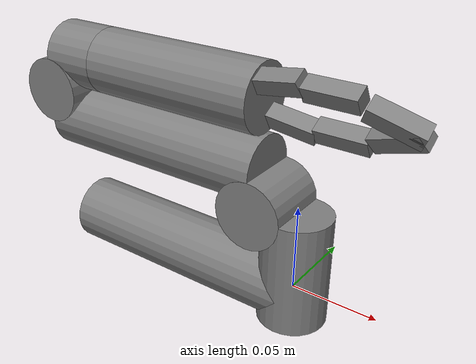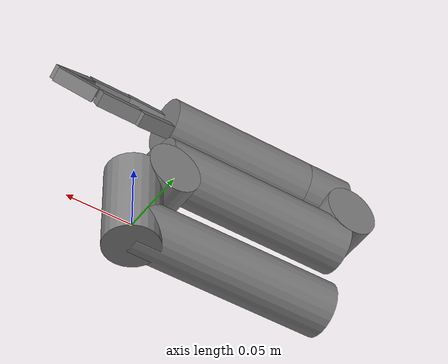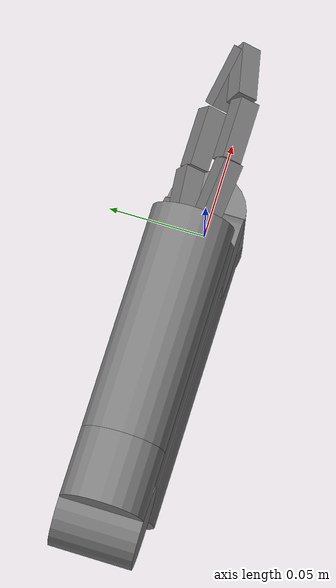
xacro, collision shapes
<?xml version="1.0"?>
<robot xmlns:xacro="http://www.ros.org/wiki/xacro" name="alpha_5">
    <xacro:arg name="initial_positions_file" default="initial_positions.yaml" />

    <!-- Import alpha_5 urdf file -->
    <xacro:include filename="$(find bpl_alpha_test)/urdf/alpha_5.urdf.xacro" />

    <!-- Import control_xacro -->
    <xacro:include filename="alpha_5.ros2_control.xacro" />

    <xacro:alpha_5_ros2_control name="FakeSystem" initial_positions_file="$(arg initial_positions_file)"/>

</robot>

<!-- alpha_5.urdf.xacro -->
<robot name="alpha_5" xmlns:xacro="http://ros.org/wiki/xacro">

    <material name="black">
        <color rgba="0.5 0.5 0.5 1.0"/>
    </material>

    <link name="world"/>

    <joint name="world_to_base" type="fixed">
        <parent link="world"/>
        <child link="base_link"/>
        <origin xyz="0 0 0" rpy="0 0 0"/>
    </joint>

    <link name="base_link">
        <inertial>
            <mass value="1.0" />
              <inertia ixx="0.001" iyy="0.001" izz="0.001"
                       ixy="0.0" ixz="0.0" iyz="0.0" />
        </inertial>
    </link>

    <link name="m3_inline_link">
        <inertial>
            <mass value="0.5" />
            <inertia  ixx="0.001" ixy="0.0"  ixz="0.0"
                      iyy="0.001"  iyz="0.0"  izz="0.0001" />
        </inertial>
        <visual>
            <geometry>
                <mesh filename="package://bpl_alpha_description/meshes/M3-INLINE.stl"/>
            </geometry>
            <origin rpy="0 0 0" xyz="0 0 0"/>
            <material name="black"/>
        </visual>
        <collision>
            <geometry>
                <cylinder length="0.150" radius="0.020" />
            </geometry>
            <origin rpy="0 1.57075 0" xyz="-0.075 0 0" />
        </collision>
    </link>

    <joint name="base_link_joint" type="fixed">
        <parent link="base_link"/>
        <child link="m3_inline_link"/>
        <origin rpy="0 0 0"/>
    </joint>

    <link name="m2_1_1_link">
        <inertial>
            <mass value="0.5" />
            <inertia  ixx="0.001" ixy="0.0"  ixz="0.0"  iyy="0.001"  iyz="0.0"  izz="0.0001" />
        </inertial>
        <visual>
            <geometry>
                <mesh filename="package://bpl_alpha_description/meshes/M2-1-1.stl"/>
            </geometry>
            <origin rpy="0 0 0" xyz="0 0 0.000" />
            <material name="black"/>
        </visual>
        <collision>
            <geometry>
                <cylinder length="0.066" radius="0.020" />
            </geometry>
            <origin rpy="0 0 0" xyz="0 0 0.000" />
        </collision>
    </link>

    <joint name="axis_e" type="revolute">
        <parent link="m3_inline_link"/>
        <child link="m2_1_1_link"/>
        <origin xyz="0 0 0.014"/>
        <axis xyz="0 0 1"/>
        <limit effort="25" lower="0.0" upper="6.3" velocity="4.0"/>
        <dynamics damping="0.1"/>
    </joint>

    <link name="m2_joint_link">
        <inertial>
            <mass value="0.5" />
            <inertia  ixx="0.001" ixy="0.0"  ixz="0.0"  iyy="0.001"  iyz="0.0"  izz="0.0001" />
        </inertial>
        <visual>
            <geometry>
                <mesh filename="package://bpl_alpha_description/meshes/M2.stl"/>
            </geometry>
            <origin rpy="0 0 0" xyz="0 0 0"/>
            <material name="black"/>
        </visual>
        <collision>
            <geometry>
                <cylinder length="0.145" radius="0.020" />
            </geometry>
            <origin rpy="0 0 0" xyz="-0.02 0 -0.0725" />
        </collision>
        <collision>
            <geometry>
                <cylinder length="0.040" radius="0.020" />
            </geometry>
            <origin rpy="1.5707 0 0" xyz="0 0 0" />
        </collision>
        <collision>
            <geometry>
                <cylinder length="0.040" radius="0.020" />
            </geometry>
            <origin rpy="1.5707 0 0" xyz="-0.040 0 -0.1453" />
        </collision>
    </link>

    <joint name="axis_d" type="revolute">
        <parent link="m2_1_1_link"/>
        <child link="m2_joint_link"/>
        <origin xyz="-0.02 0 0.033" rpy="0 1.56 0"/>
        <axis xyz="0 1 0"/>
        <limit effort="20" lower="0.0" upper="1.56" velocity="4.0"/>
        <dynamics damping="0.1"/>
    </joint>

    <link name="m2_1_2_link">
        <inertial>
            <mass value="0.5" />
            <inertia  ixx="0.001" ixy="0.0"  ixz="0.0"  iyy="0.001"  iyz="0.0"  izz="0.0001" />
        </inertial>
        <visual>
            <geometry>
                <mesh filename="package://bpl_alpha_description/meshes/M2-1-3.stl"/>
            </geometry>
            <origin rpy="0 0 0" xyz="0 0 0"/>
            <material name="black"/>
        </visual>
        <collision>
            <geometry>
                <cylinder length="0.033" radius="0.020" />
            </geometry>
            <origin rpy="0 0 0" xyz="0.02 0 0.0165" />
        </collision>
    </link>

    <joint name="axis_c" type="revolute">
        <parent link="m2_joint_link"/>
        <child link="m2_1_2_link"/>
        <origin xyz="-0.04 0 -0.1453" rpy="0 0 3.14159"/>
        <axis xyz="0 1 0"/>
        <limit effort="10" lower="0.0" upper="3.5" velocity="4.0"/>
        <dynamics damping="0.1"/>
    </joint>

    <link name="m1_link">
        <inertial>
            <mass value="0.5" />
            <inertia  ixx="0.001" ixy="0.0"  ixz="0.0"  iyy="0.001"  iyz="0.0"  izz="0.0001" />
        </inertial>
        <visual>
            <geometry>
                <mesh filename="package://bpl_alpha_description/meshes/RS1-100-101-123.stl"/>
            </geometry>
            <origin rpy="0 -1.5707 0" xyz="0 0 0"/>
            <material name="black"/>
        </visual>
            <collision>
            <geometry>
                <cylinder length="0.10975" radius="0.020" />
            </geometry>
            <origin rpy="0 0 0" xyz="0.00 0 0.054875" />
        </collision>
    </link>

    <joint name="axis_b" type="revolute">
        <parent link="m2_1_2_link"/>
        <child link="m1_link"/>
        <origin xyz="0.02 0 0.033" rpy="0 0 2.09439"/>
        <axis xyz="0 0 -1"/>
        <limit effort="10" lower="0.0" upper="6.2" velocity="4.0"/>
        <dynamics damping="0.1"/>
    </joint>

    <material name="jaws_black">
        <color rgba="0.3 0.3 0.3 1"/>
    </material>

    <joint name="jaws_joint" type="fixed">
        <origin rpy="0 0 0" xyz="0 0 0.09975"/>
        <parent link="m1_link"/>
        <child link="jaws_base_link"/>
    </joint>

    <link name="jaws_base_link">
        <inertial>
            <mass value="0.5" />
            <inertia  ixx="0.001" ixy="0.0"  ixz="0.0"  iyy="0.001"  iyz="0.0"  izz="0.0001" />
        </inertial>
    </link>

    <link name="push_rod">
        <inertial>
            <mass value="0.2" />
            <inertia  ixx="0.001" ixy="0.0"  ixz="0.0"  iyy="0.001"  iyz="0.0"  izz="0.0001" />
        </inertial>
    </link>

    <joint name="axis_a" type="prismatic">
        <origin rpy="0 0 0" xyz="0 0 0.009"/>
        <parent link="jaws_base_link"/>
        <child link="push_rod"/>
        <axis xyz="0 0 1"/>
        <limit effort="10" lower="0.0" upper="0.015" velocity="4.0"/>
        <dynamics damping="0.1"/>
    </joint>

    <joint name="standard_jaws_joint" type="fixed">
        <parent link="jaws_base_link"/>
        <child link="standard_jaws_base_link" />
        <origin xyz="0 0 0" rpy="0 0 0"/>
    </joint>

    <link name="standard_jaws_base_link">
        <visual>
            <geometry>
                <mesh filename="package://bpl_alpha_description/meshes/end_effectors/RS1-124.stl"/>
            </geometry>
            <material name="black"/>
        </visual>
        <inertial>
            <mass value="0.2" />
            <inertia  ixx="0.001" ixy="0.0"  ixz="0.0"  iyy="0.001"  iyz="0.0"  izz="0.0001" />
        </inertial>
    </link>

    <link name="rs1_130_link">
        <visual>
            <geometry>
                <mesh filename="package://bpl_alpha_description/meshes/end_effectors/RS1-130.stl"/>
            </geometry>
            <material name="black"/>
            <origin xyz="0 0 0" rpy="0 0 0"/>
        </visual>
        <collision>
            <origin xyz="0 0 0.01501" rpy="-0.2 0 0"/>
            <geometry>
                <box size="0.01 0.01 0.03"/>
            </geometry>
        </collision>
        <collision>
            <origin xyz="0 0 0.04504" rpy="0 0 0"/>
            <geometry>
                <box size="0.01 0.01 0.03"/>
            </geometry>
        </collision>
        <collision>
            <origin xyz="0 -0.01 0.07506" rpy="0.4  0 0"/>
            <geometry>
                <box size="0.01 0.01 0.03"/>
            </geometry>
        </collision>
        <inertial>
            <origin xyz="0 0 0.04505" rpy="0 0 0"/>
            <mass value="0.1"/>
            <inertia
            ixx="1e-4" ixy="0.0" ixz="0.0"
            iyy="1e-4" iyz="0.0"
            izz="1e-4"/>
        </inertial>
    </link>

    <joint name="rs1_130_joint" type="revolute">
        <origin xyz="0 0.0155 0.0069" rpy="0 0 0"/>
        <parent link="standard_jaws_base_link"/>
        <child link="rs1_130_link"/>
        <axis xyz="-1 0 0"/>
        <limit lower="0" upper="0.5" effort="10" velocity="10"/>
        <mimic joint="axis_a" multiplier="51" offset="0"/>
    </joint>

    <link name="rs1_139_link">
        <visual>
            <geometry>
                <mesh filename="package://bpl_alpha_description/meshes/end_effectors/RS1-139.stl"/>
            </geometry>
            <material name="black"/>
            <origin xyz="0 0 0" rpy="0 0 0"/>
        </visual>
        <collision>
            <origin xyz="0 0 0.01501" rpy="0.2 0 0"/>
            <geometry>
                <box size="0.01 0.01 0.03"/>
            </geometry>
        </collision>
        <collision>
            <origin xyz="0 0 0.04504" rpy="0 0 0"/>
            <geometry>
                <box size="0.01 0.01 0.03"/>
            </geometry>
        </collision>
        <collision>
            <origin xyz="0 0.01 0.07506" rpy="-0.4  0 0"/>
            <geometry>
                <box size="0.01 0.01 0.03"/>
            </geometry>
        </collision>
        <inertial>
            <origin xyz="0 0 0.04505" rpy="0 0 0"/>
            <mass value="0.1"/>
            <inertia
            ixx="1e-4" ixy="0.0" ixz="0.0"
            iyy="1e-4" iyz="0.0"
            izz="1e-4"/>
        </inertial>
    </link>

    <joint name="rs1_139_joint" type="revolute">
        <origin xyz="0 -0.0155 0.0069" rpy="0 0 0"/>
        <parent link="standard_jaws_base_link"/>
        <child link="rs1_139_link"/>
        <axis xyz="1 0 0"/>
        <limit lower="0" upper="0.5" effort="10" velocity="10"/>
        <mimic joint="rs1_130_joint" multiplier="1" offset="0"/>
    </joint>

    <gazebo reference="standard_jaws_base_link">
        <material>Gazebo/FlatBlack</material>
    </gazebo>
    <gazebo reference="rs1_130_link">
        <material>Gazebo/FlatBlack</material>
    </gazebo>
    <gazebo reference="rs1_139_link">
        <material>Gazebo/FlatBlack</material>
    </gazebo>

    <gazebo reference="m3_inline_link">
        <material>Gazebo/FlatBlack</material>
    </gazebo>
    <gazebo reference="m2_1_1_link">
        <material>Gazebo/FlatBlack</material>
    </gazebo>
    <gazebo reference="m2_joint_link">
        <material>Gazebo/FlatBlack</material>
    </gazebo>
    <gazebo reference="m2_1_2_link">
        <material>Gazebo/FlatBlack</material>
    </gazebo>
    <gazebo reference="m1_link">
        <material>Gazebo/FlatBlack</material>
    </gazebo>

    <xacro:include filename='ros2_control.xacro'/>

</robot>
